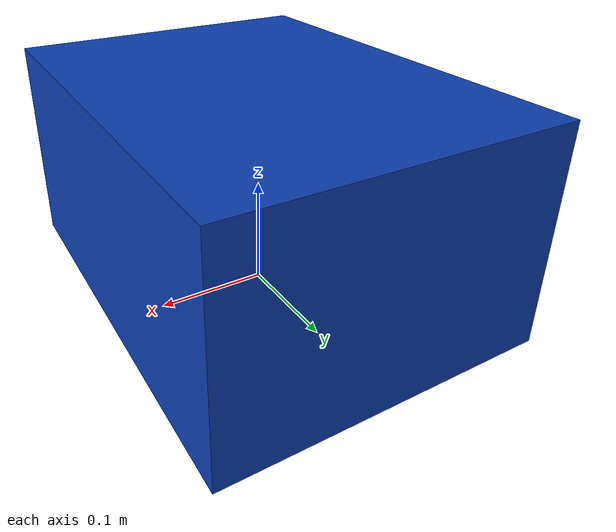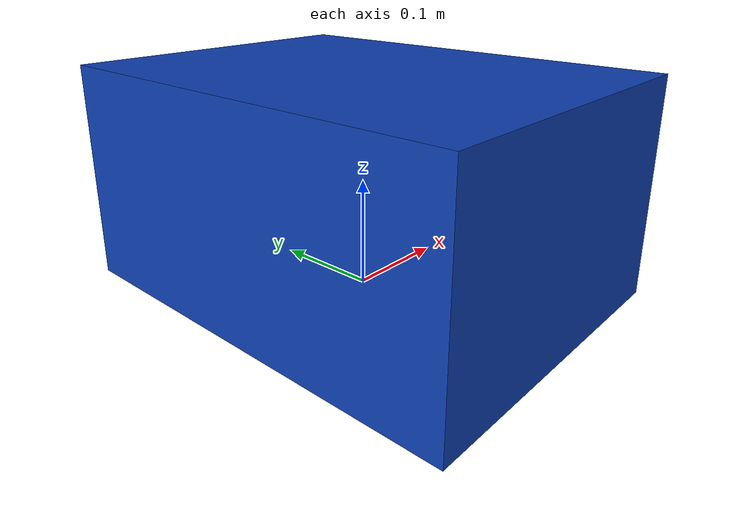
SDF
<?xml version="1.0"?>
<sdf version="1.6">
  <model name="simple_dock">
    <static>true</static>
    <link name="link">
      <collision name="collision">
        <pose>0 0 0.1 0 0 0</pose>
        <geometry>
          <box>
            <size>0.3 0.4 0.2</size>
          </box>
        </geometry>
      </collision>
      <visual name="visual">
        <pose>0 0 0.1 0 0 0</pose>
        <geometry>
          <box>
            <size>0.3 0.4 0.2</size>
          </box>
        </geometry>
        <material>
          <ambient>0.05 0.25 0.7 1</ambient>
          <diffuse>0.05 0.25 0.7 1</diffuse>
          <specular>0.1 0.1 0.1 1</specular>
        </material>
      </visual>
    </link>
  </model>
</sdf>
